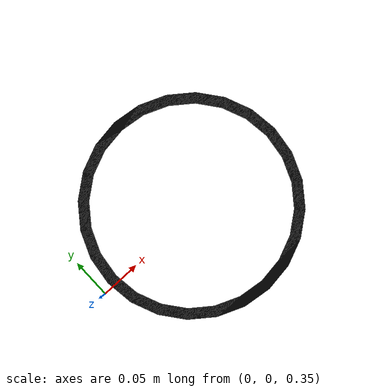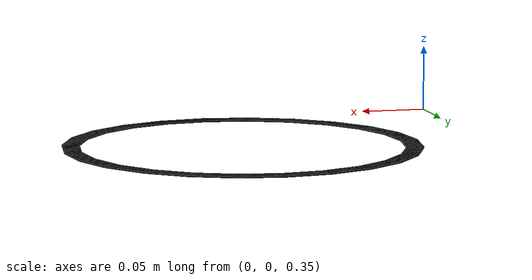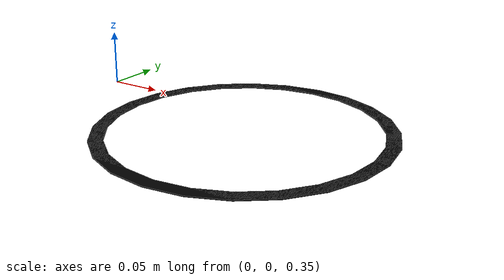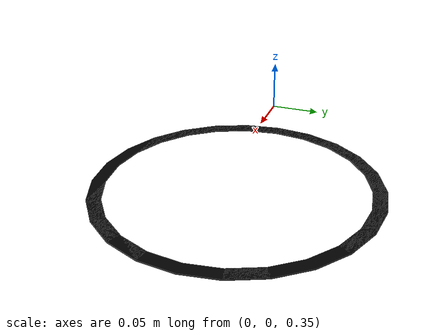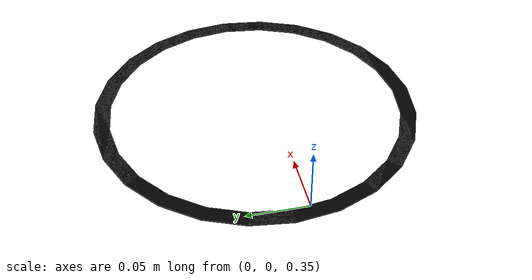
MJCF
<mujoco model="original-17">
  <default>
    <default class="visual">
      <geom group="2" type="mesh" contype="0" conaffinity="0"/>
    </default>
    <default class="collision">
      <geom group="3" type="mesh"/>
    </default>
  </default>
  <asset>
    <material name="material_0_0" specular="0.06666666666666667" shininess="0.03" rgba="0.13333333333333333 0.13333333333333333 0.13333333333333333 1"/>
    <material name="material_1_0" specular="0.06666666666666667" shininess="0.03" rgba="0 0 0 1"/>
    <mesh file="original-17_0.obj"/>
    <mesh file="original-17_1.obj"/>
  </asset>
  <worldbody>
    <body name="original-17">
      <geom mesh="original-17_0" material="material_1_0" class="visual"/>
      <geom mesh="original-17_1" material="material_0_0" class="visual"/>
      <geom mesh="original-17_0" class="collision"/>
      <geom mesh="original-17_1" class="collision"/>
    </body>
  </worldbody>
</mujoco>
